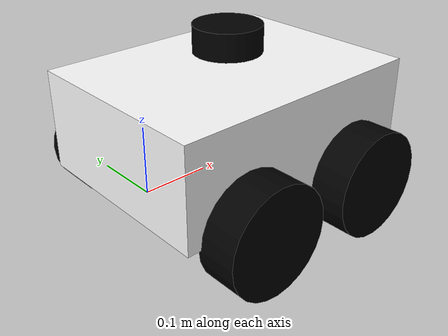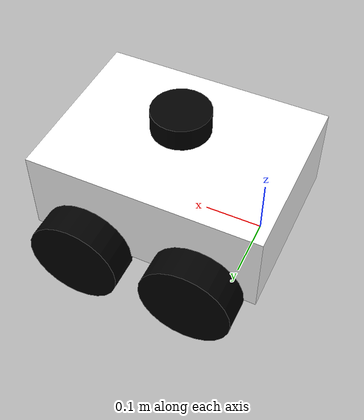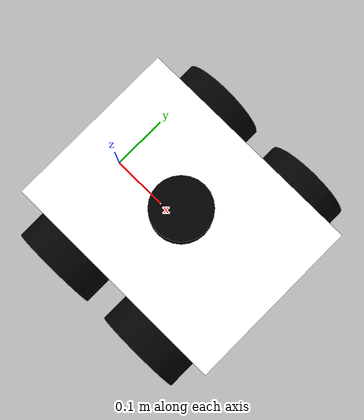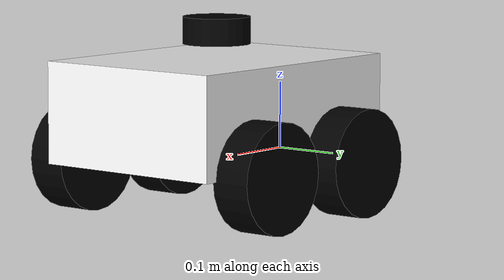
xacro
<?xml version="1.0"?>
<robot name="fourwd_robot" xmlns:xacro="http://www.ros.org/wiki/xacro">

  <xacro:include filename="$(find four_wheel)/urdf/robot_core.xacro"/>
  <xacro:include filename="$(find four_wheel)/urdf/lidar.xacro"/>
  <xacro:include filename="$(find four_wheel)/urdf/ros2_control.xacro"/>

</robot>

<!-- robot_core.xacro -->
<robot xmlns:xacro="http://www.ros.org/wiki/xacro">

  <xacro:include filename="$(find four_wheel)/urdf/inertial_macros.xacro"/>

  <material name="white"><color rgba="1 1 1 1"/></material>
  <material name="black"><color rgba="0 0 0 1"/></material>
  <material name="orange"><color rgba="1 0.4 0 1"/></material>

  <!-- ===================== BASE ===================== -->
  <link name="base_link"></link>

  <joint name="chassis_joint" type="fixed">
    <parent link="base_link"/>
    <child link="chassis"/>
    <origin xyz="0 0 0"/>
  </joint>

  <link name="chassis">
    <visual>
      <origin xyz="0.15 0 0.075"/>
      <geometry><box size="0.4 0.3 0.15"/></geometry>
      <material name="white"/>
    </visual>
    <collision>
      <origin xyz="0.15 0 0.075"/>
      <geometry><box size="0.4 0.3 0.15"/></geometry>
    </collision>
    <xacro:inertial_box mass="2.0" x="0.4" y="0.3" z="0.15">
      <origin xyz="0.15 0 0.075" rpy="0 0 0"/>
    </xacro:inertial_box>
  </link>

  <!-- ===================== WHEEL MACRO ===================== -->
  <xacro:macro name="wheel" params="prefix x_pos y_pos">
    <joint name="${prefix}_wheel_joint" type="continuous">
      <parent link="chassis"/>
      <child link="${prefix}_wheel"/>
      <origin xyz="${x_pos} ${y_pos} 0" rpy="-${pi/2} 0 0"/>
      <axis xyz="0 0 1"/>
    </joint>

    <link name="${prefix}_wheel">
      <visual>
        <geometry><cylinder radius="0.08" length="0.06"/></geometry>
        <material name="black"/>
      </visual>
      <collision>
        <geometry><cylinder radius="0.08" length="0.06"/></geometry>
      </collision>
      <xacro:inertial_cylinder mass="0.3" length="0.06" radius="0.08">
        <origin xyz="0 0 0" rpy="0 0 0"/>
      </xacro:inertial_cylinder>
    </link>

    <gazebo reference="${prefix}_wheel">
      <mu1>1.0</mu1>
      <mu2>1.0</mu2>
    </gazebo>
  </xacro:macro>

  <!-- 4 wheels: front-left, front-right, rear-left, rear-right -->
  <xacro:wheel prefix="front_left"  x_pos="0.25"  y_pos="0.175"/>
  <xacro:wheel prefix="front_right" x_pos="0.25"  y_pos="-0.175"/>
  <xacro:wheel prefix="rear_left"   x_pos="0.05"  y_pos="0.175"/>
  <xacro:wheel prefix="rear_right"  x_pos="0.05"  y_pos="-0.175"/>

  <gazebo reference="chassis">
    <material>Gazebo/White</material>
  </gazebo>

</robot>

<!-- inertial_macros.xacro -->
<robot xmlns:xacro="http://www.ros.org/wiki/xacro">

  <xacro:macro name="inertial_box" params="mass x y z *origin">
    <inertial>
      <xacro:insert_block name="origin"/>
      <mass value="${mass}"/>
      <inertia ixx="${(1/12) * mass * (y*y+z*z)}" ixy="0.0" ixz="0.0"
               iyy="${(1/12) * mass * (x*x+z*z)}" iyz="0.0"
               izz="${(1/12) * mass * (x*x+y*y)}"/>
    </inertial>
  </xacro:macro>

  <xacro:macro name="inertial_cylinder" params="mass length radius *origin">
    <inertial>
      <xacro:insert_block name="origin"/>
      <mass value="${mass}"/>
      <inertia ixx="${(1/12) * mass * (3*radius*radius + length*length)}" ixy="0.0" ixz="0.0"
               iyy="${(1/12) * mass * (3*radius*radius + length*length)}" iyz="0.0"
               izz="${(1/2) * mass * radius*radius}"/>
    </inertial>
  </xacro:macro>

</robot>

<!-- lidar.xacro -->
<robot xmlns:xacro="http://www.ros.org/wiki/xacro">

  <joint name="lidar_joint" type="fixed">
    <parent link="chassis"/>
    <child link="lidar_link"/>
    <origin xyz="0.15 0 0.19" rpy="0 0 0"/>
  </joint>

  <link name="lidar_link">
    <visual>
      <geometry><cylinder radius="0.05" length="0.04"/></geometry>
      <material name="black"/>
    </visual>
    <collision>
      <geometry><cylinder radius="0.05" length="0.04"/></geometry>
    </collision>
    <xacro:inertial_cylinder mass="0.15" length="0.04" radius="0.05">
      <origin xyz="0 0 0" rpy="0 0 0"/>
    </xacro:inertial_cylinder>
  </link>

  <gazebo reference="lidar_link">
    <sensor name="lidar" type="gpu_lidar">
      <pose>0 0 0 0 0 0</pose>
      <topic>scan</topic>
      <update_rate>10</update_rate>
      <always_on>true</always_on>
      <visualize>true</visualize>
      <ray>
        <scan>
          <horizontal>
            <samples>360</samples>
            <resolution>1</resolution>
            <min_angle>-3.14159</min_angle>
            <max_angle>3.14159</max_angle>
          </horizontal>
        </scan>
        <range>
          <min>0.12</min>
          <max>10.0</max>
          <resolution>0.015</resolution>
        </range>
      </ray>
      <gz_frame_id>lidar_link</gz_frame_id>
    </sensor>
  </gazebo>

</robot>
